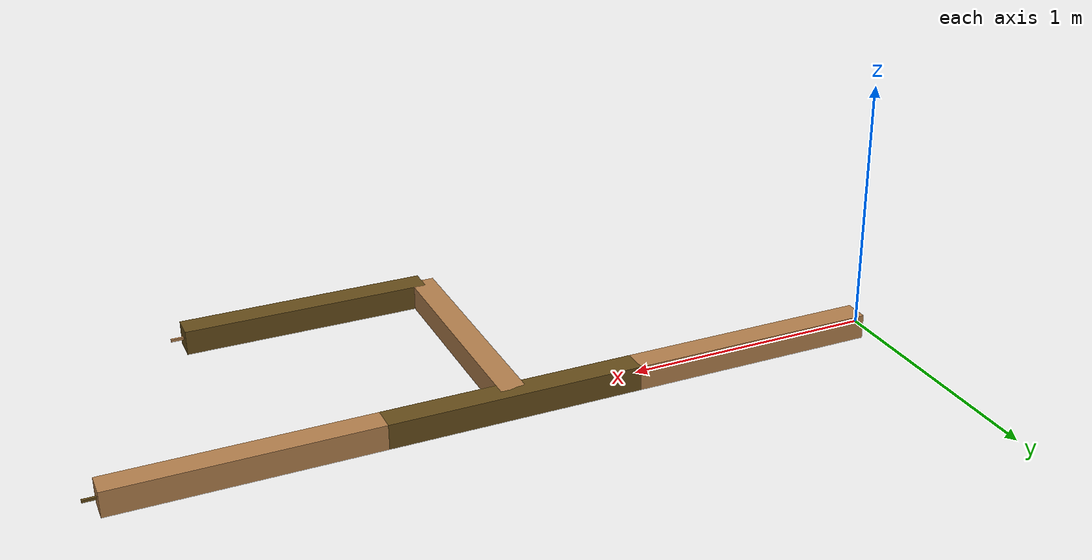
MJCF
<mujoco model="2link_robot">
    <compiler angle="radian" />
    <size njmax="500" nconmax="100" />
    <visual>
        <quality shadowsize="2048" />
        <headlight ambient="0.4 0.4 0.4" diffuse="0.8 0.8 0.8" specular="0.1 0.1 0.1" />
    </visual>
    <asset>
        <material name="self" rgba="0.7 0.5 0.3 1" />
        <material name="self2" rgba="0.4 0.3 0.1 1" />
    </asset>
    <worldbody>
        <light name="light" pos="0 0 1" dir="0 0 -1" />
        <body name="b1" pos="0 0 0">
            <inertial pos="0.5 0 0" mass="1" diaginertia="1 2 3" />
            <joint name="j1" pos="0 0 0" axis="0 0 1" />
            <geom name="b1" size="0.5 0.05 0.05" pos="0.5 0 0" type="box" material="self" />
            <body name="b2" pos="1 0 0">
                <inertial pos="0.5 0 0" mass="1" diaginertia="1 2 3" />
                <joint name="j2" pos="0 0 0" axis="0 0 1" />
                <geom name="b2" size="0.5 0.05 0.05" pos="0.5 0 0" type="box" material="self2" />
                <body name="b3" pos="0.5 0 0">
                    <inertial pos="0 -0.5 0" mass="1" diaginertia="1 2 3" />
                    <joint name="j3" pos="0 0 0" axis="0 0 1" />
                    <geom name="b3" size="0.05 0.5 0.05" pos="0 -0.5 0" type="box" material="self" />
                    <body name="b4" pos="0 -1 0">
                        <inertial pos="0.5 0 0" mass="1" diaginertia="1 2 3" />
                        <joint name="j4" pos="0 0 0" axis="0 0 1" />
                        <geom name="b4" size="0.5 0.05 0.05" pos="0.5 0 0" type="box" material="self2" />
                        <body name="ee_b4" pos="1 0 0">
                            <inertial pos="0 0 0" mass="0" diaginertia="0 0 0" />
                            <geom name="ee_b4" size="0.05 0.005 0.005" type="box" material="self" />
                        </body>
                    </body>
                </body>
                <body name="b5" pos="1 0 0">
                    <inertial pos="0.5 0 0" mass="1" diaginertia="1 2 3" />
                    <joint name="j5" pos="0 0 0" axis="0 0 1" />
                    <geom name="b5" size="0.5 0.05 0.05" pos="0.5 0 0" type="box" material="self" />
                    <body name="ee_b5" pos="1 0 0">
                        <inertial pos="0 0 0" mass="0" diaginertia="0 0 0" />
                        <geom name="ee_b5" size="0.05 0.005 0.005" type="box" material="self2" />
                    </body>
                </body>
            </body>
        </body>
    </worldbody>
</mujoco>
